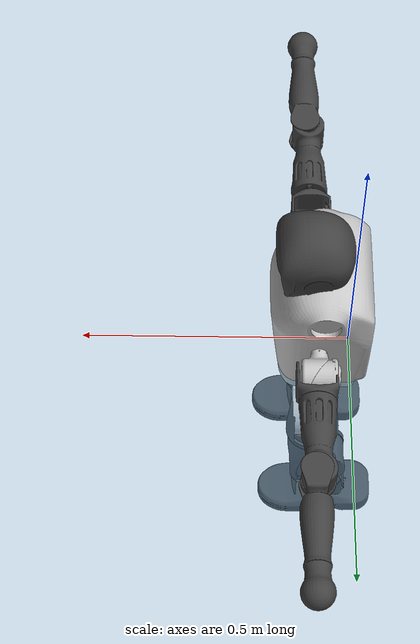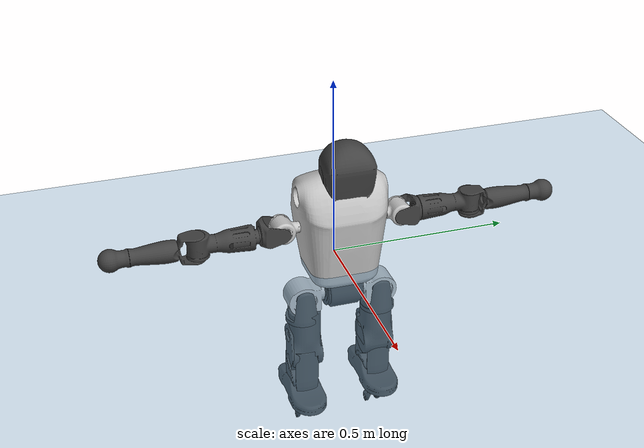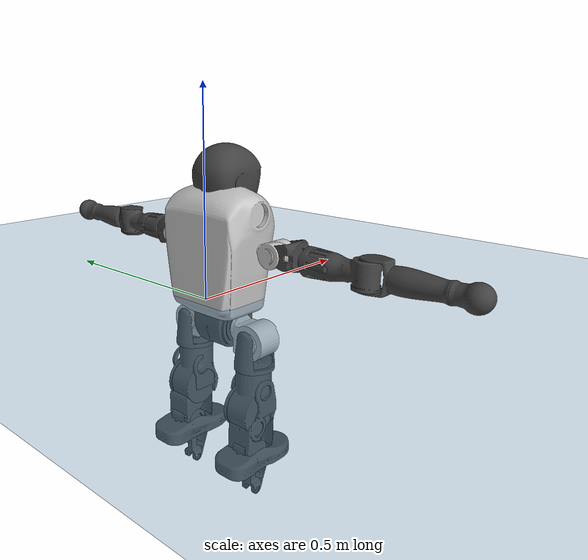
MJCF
<mujoco model="T1">
  <compiler angle="radian" assetdir="assets" balanceinertia="true" inertiafromgeom="false"/>

  <option timestep="0.005" density="1.2" viscosity="2e-05"/>

  <size nkey="1"/>

  <visual>
    <quality shadowsize="8192"/>
    <map shadowclip="0.5"/>
  </visual>

  <default>
    <default class="/">
      <joint armature="0.01" damping="0.01" frictionloss="0.1"/>
      <geom contype="0" conaffinity="0" group="1" solref="-1000 -80"/>
      <site size="0.01 0.005 0.005" group="5"/>
      <general forcelimited="true" biastype="affine" gainprm="25" biasprm="0 -25 -0.6"/>
      <default class="t1">
        <geom rgba="0.25 0.25 0.25 1"/>
        <default class="visual">
          <geom type="mesh" group="2"/>
        </default>
        <default class="collision">
          <geom group="3"/>
        </default>
        <default class="foot">
          <geom size="0.1115 0.05 0.015" type="box" condim="6" group="4" priority="1" solimp="0.015 1 0.015"/>
        </default>
        <default class="reward_collision_sphere">
          <geom group="5" rgba="1 0 0 1"/>
        </default>
      </default>
    </default>
  </default>

  <asset>
    <texture type="skybox" colorspace="auto" name="//unnamed_texture_0" builtin="gradient" rgb1="0.95 0.95 0.95" rgb2="0.95 0.95 0.95" width="100" height="600"/>
    <texture type="2d" colorspace="auto" name="texplane" builtin="checker" rgb1="0.345 0.575 0.748" rgb2="0.345 0.575 0.748" markrgb="1 1 1" width="512" height="512"/>
    <material name="MatPlane" class="/" texture="texplane" texuniform="true" texrepeat="2 2" specular="0.9"/>
    <mesh name="Trunk" class="/" file="Trunk.stl"/>
    <mesh name="H1" class="/" file="H1.stl"/>
    <mesh name="H2" class="/" file="H2.stl"/>
    <mesh name="AL1" class="/" file="AL1.stl"/>
    <mesh name="AL2" class="/" file="AL2.stl"/>
    <mesh name="AL3" class="/" file="AL3.stl"/>
    <mesh name="left_hand_link" class="/" file="left_hand_link.stl"/>
    <mesh name="AR1" class="/" file="AR1.stl"/>
    <mesh name="AR2" class="/" file="AR2.stl"/>
    <mesh name="AR3" class="/" file="AR3.stl"/>
    <mesh name="right_hand_link" class="/" file="right_hand_link.stl"/>
    <mesh name="Waist" class="/" file="Waist.stl"/>
    <mesh name="Hip_Pitch_Left" class="/" file="Hip_Pitch_Left.stl"/>
    <mesh name="Hip_Roll_Left" class="/" file="Hip_Roll_Left.stl"/>
    <mesh name="Hip_Yaw_Left" class="/" file="Hip_Yaw_Left.stl"/>
    <mesh name="Shank_Left" class="/" file="Shank_Left.stl"/>
    <mesh name="Ankle_Cross_Left" class="/" file="Ankle_Cross_Left.stl"/>
    <mesh name="left_foot_link" class="/" file="left_foot_link.stl"/>
    <mesh name="Hip_Pitch_Right" class="/" file="Hip_Pitch_Right.stl"/>
    <mesh name="Hip_Roll_Right" class="/" file="Hip_Roll_Right.stl"/>
    <mesh name="Hip_Yaw_Right" class="/" file="Hip_Yaw_Right.stl"/>
    <mesh name="Shank_Right" class="/" file="Shank_Right.stl"/>
    <mesh name="Ankle_Cross_Right" class="/" file="Ankle_Cross_Right.stl"/>
    <mesh name="right_foot_link" class="/" file="right_foot_link.stl"/>
  </asset>

  <worldbody>
    <geom name="floor" class="/" size="100 100 0.125" type="plane" group="0" material="MatPlane"/>
    <light name="toplight_shadow" class="/" pos="0 0 5" dir="0.0990148 0.0990148 -0.990148" type="directional" ambient="0.04 0.04 0.04" diffuse="0.55 0.55 0.55" specular="0.12 0.12 0.12"/>
    <light name="toplight_fill" class="/" pos="0 0 5" dir="0.0990148 0.0990148 -0.990148" type="directional" castshadow="false" ambient="0.04 0.04 0.04" diffuse="0.3 0.3 0.3" specular="0.08 0.08 0.08"/>
    <body name="trunk" childclass="t1" pos="-0.00205545 -4.93078e-06 -0.00529639" quat="0.999999 -0.000861607 0.000450901 0.000395389">
      <inertial pos="0.0581257 -0.00356265 0.0629621" quat="0.999971 -0.00124404 -0.0037225 -0.00654446" mass="9.37197" diaginertia="0.125887 0.106915 0.00486277"/>
      <joint name="//unnamed_joint_0" type="free" armature="0" damping="0" frictionloss="0"/>
      <geom name="//unnamed_geom_1" class="visual" rgba="0.76 0.76 0.76 1" mesh="Trunk"/>
      <geom name="//unnamed_geom_2" class="collision" size="0.0679183 0.0905577 0.135837" pos="0.0632697 0 0.0722431" type="box"/>
      <geom name="//unnamed_geom_3" class="reward_collision_sphere" size="0.104141" pos="0.0632697 0 0.0602025"/>
      <geom name="//unnamed_geom_4" class="reward_collision_sphere" size="0.0135837" pos="0.0632697 0.0901179 0"/>
      <geom name="//unnamed_geom_5" class="reward_collision_sphere" size="0.0135837" pos="0.0632697 -0.0901179 0"/>
      <geom name="//unnamed_geom_6" class="reward_collision_sphere" size="0.0135837" pos="0.0632697 0.113442 0.108365"/>
      <geom name="//unnamed_geom_7" class="reward_collision_sphere" size="0.0135837" pos="0.0632697 -0.113442 0.108365"/>
      <site name="imu" pos="-0.0436209 0.033373 -0.00413399" size="0.00905577"/>
      <camera name="track" pos="0 -2.12042 0" quat="0.707107 0.707107 0 0" mode="trackcom"/>
      <camera name="ego_camera" pos="0.128648 0 0.252851" quat="-0.5 -0.5 0.5 0.5"/>
      <body name="H1" pos="0.0660798 0.00248149 0.143906" quat="0.999999 5.97131e-06 -0.00117473 0.000199811">
        <inertial pos="-0.00152083 -0.00336453 0.033166" quat="0.765091 -0.0142688 0.00281818 0.643758" mass="0.316375" diaginertia="0.000291854 0.000295688 1.08399e-05"/>
        <joint name="AAHead_yaw" pos="0 0 0" axis="0.0045442 -1.49716e-05 0.99999" range="-1.58487 1.50944" armature="0.00941229" damping="0.0059687" frictionloss="0.0871925"/>
        <geom name="//unnamed_geom_8" class="visual" mesh="H1"/>
        <body name="H2" pos="7.05471e-05 0.00727589 0.0365081" quat="1 -0.00040275 0.000476973 -0.000365496">
          <inertial pos="-0.000959909 -0.00650123 0.0557651" quat="0.988448 0.106181 -0.0746401 -0.0782593" mass="0.428326" diaginertia="0.0027057 0.00263347 0.000136325"/>
          <joint name="Head_pitch" pos="0 0 0" axis="0.00115164 -0.999988 0.00469871" range="-1.2179 0.277391" armature="0.0119988" damping="0.0144918" frictionloss="0.0873656"/>
          <geom name="//unnamed_geom_9" class="visual" mesh="H2"/>
          <geom name="//unnamed_geom_10" class="collision" size="0.0724461" pos="0.0105449 0 0.0662228"/>
          <geom name="//unnamed_geom_11" class="reward_collision_sphere" size="0.0815019" pos="0.0210899 0 0.0602025"/>
        </body>
      </body>
      <body name="AL1" pos="0.066057 0.116794 0.135532" quat="1 -0.000292205 -9.7433e-05 -9.02403e-05">
        <inertial pos="-0.0020029 0.0460525 -0.00746973" quat="0.50861 0.500742 -0.497279 0.493242" mass="0.393743" diaginertia="0.00177093 0.00174667 2.32145e-05"/>
        <joint name="Left_Shoulder_Pitch" pos="0 0 0" axis="0.000501613 1 -0.000219509" stiffness="0.030211" range="-3.16955 1.29239" armature="0.00977145" damping="0.00897726" frictionloss="0.0918094"/>
        <geom name="//unnamed_geom_12" class="visual" rgba="0.76 0.76 0.76 1" mesh="AL1"/>
        <body name="AL2" pos="0.00436393 0.0429347 0.00100112" quat="0.99999 0.00378662 -0.0021607 -0.000475017">
          <inertial pos="0.00309076 0.0386166 0.00496192" quat="0.482689 0.51907 -0.487776 0.509561" mass="0.0950936" diaginertia="0.000460611 0.000391676 1.24001e-05"/>
          <joint name="Left_Shoulder_Roll" pos="0 0 0" axis="-0.998759 -0.0135215 0.0479331" stiffness="0.00927454" range="-1.51055 1.7688" armature="0.00823872" damping="0.0449885" frictionloss="0.0918571"/>
          <geom name="//unnamed_geom_13" class="visual" mesh="AL2"/>
          <body name="AL3" pos="-0.000174548 0.0572871 0.00102845" quat="0.999989 -0.00221032 -0.00315848 -0.00264012">
            <inertial pos="0.00225665 0.0926611 0.000344154" quat="0.690593 0.723007 -0.00868366 -0.0163437" mass="0.685244" diaginertia="0.0148131 0.0159431 4.54884e-05"/>
            <joint name="Left_Elbow_Pitch" pos="0 0 0" axis="0.00312596 -0.999954 0.00909495" stiffness="0.000540751" range="-2.24509 2.2929" armature="0.00981145" damping="0.00377808" frictionloss="0.0969314"/>
            <geom name="//unnamed_geom_14" class="visual" mesh="AL3"/>
            <geom name="//unnamed_geom_15" class="collision" size="0.0271673 0.0679183" pos="0 0.0530105 0" quat="0.707105 0.707108 0 0" type="cylinder"/>
            <geom name="//unnamed_geom_16" class="reward_collision_sphere" size="0.0326008"/>
            <body name="left_hand_link" pos="0.00480083 0.147635 -0.00322345" quat="0.999993 0.00351598 0.00116592 -0.000806">
              <inertial pos="-0.00162914 0.117409 0.0074276" quat="0.702556 0.710848 -0.0284452 0.0173605" mass="0.270994" diaginertia="0.0115828 0.0124263 1.93739e-05"/>
              <joint name="Left_Elbow_Yaw" pos="0 0 0" axis="-0.029771 0.00520173 0.999543" range="-2.43887 -0.104867" armature="0.0084938" damping="0.0222076" frictionloss="0.0511011"/>
              <geom name="//unnamed_geom_17" class="visual" mesh="left_hand_link"/>
              <geom name="//unnamed_geom_18" class="collision" size="0.0271673 0.079238" pos="0 0.137827 0" quat="0.707105 0.707108 0 0" type="cylinder"/>
              <geom name="//unnamed_geom_19" class="reward_collision_sphere" size="0.0452788"/>
              <geom name="//unnamed_geom_20" class="reward_collision_sphere" size="0.0316952" pos="0 0.116623 0"/>
              <geom name="//unnamed_geom_21" class="reward_collision_sphere" size="0.0316952" pos="0 0.227945 0"/>
            </body>
          </body>
        </body>
      </body>
      <body name="AR1" pos="0.0668443 -0.116776 0.13486" quat="0.999999 4.64462e-06 0.00122034 -0.000400623">
        <inertial pos="0.00122401 -0.0489595 0.00225428" quat="0.50737 0.492882 -0.510862 0.488531" mass="0.375256" diaginertia="0.00177746 0.00166433 2.20154e-05"/>
        <joint name="Right_Shoulder_Pitch" pos="0 0 0" axis="-0.00685972 -0.999942 -0.00835809" range="-1.3778 3.2679" armature="0.00820645" damping="0" frictionloss="0.0911653"/>
        <geom name="//unnamed_geom_22" class="visual" rgba="0.76 0.76 0.76 1" mesh="AR1"/>
        <body name="AR2" pos="0.00746385 -0.0547034 0.00299015" quat="1 -0.000203392 0.000405838 -0.000806405">
          <inertial pos="0.00662704 -0.0409252 0.00441524" quat="0.51218 0.47707 -0.515778 0.494013" mass="0.120769" diaginertia="0.000564873 0.000511147 1.37397e-05"/>
          <joint name="Right_Shoulder_Roll" pos="0 0 0" axis="-0.99999 0.00364333 -0.00243695" range="-1.77918 1.72281" armature="0.00974988" damping="0.00703044" frictionloss="0.122969"/>
          <geom name="//unnamed_geom_23" class="visual" mesh="AR2"/>
          <body name="AR3" pos="0.00208761 -0.072735 -0.00673646" quat="1 -0.000578083 0.00076671 -0.000140338">
            <inertial pos="-0.000604092 -0.091049 0.000406973" quat="0.705075 0.707603 -0.0452765 0.0108373" mass="0.776402" diaginertia="0.0172176 0.0164042 4.84745e-05"/>
            <joint name="Right_Elbow_Pitch" pos="0 0 0" axis="-0.0021442 0.999998 -0.000353388" range="-2.27509 2.24768" armature="0.00828569" damping="0" frictionloss="0.054986"/>
            <geom name="//unnamed_geom_24" class="visual" mesh="AR3"/>
            <geom name="//unnamed_geom_25" class="collision" size="0.0271673 0.0679183" pos="0 -0.0530105 0" quat="0.707105 0.707108 0 0" type="cylinder"/>
            <geom name="//unnamed_geom_26" class="reward_collision_sphere" size="0.0326008"/>
            <body name="right_hand_link" pos="0.00663911 -0.157115 7.53614e-05" quat="0.999999 -6.05183e-05 0.000517671 0.000917383">
              <inertial pos="0.00191445 -0.116303 -0.00701689" quat="0.69469 0.71864 -0.00425736 -0.0307276" mass="0.274112" diaginertia="0.0122572 0.0122425 1.88885e-05"/>
              <joint name="Right_Elbow_Yaw" pos="0 0 0" axis="-0.013086 0.00436394 0.999905" range="0.10497 2.46403" armature="0.00477154" damping="0.0190108" frictionloss="0.0877031"/>
              <geom name="//unnamed_geom_27" class="visual" mesh="right_hand_link"/>
              <geom name="//unnamed_geom_28" class="collision" size="0.0271673 0.079238" pos="0 -0.137827 0" quat="0.707105 0.707108 0 0" type="cylinder"/>
              <geom name="//unnamed_geom_29" class="reward_collision_sphere" size="0.0452788"/>
              <geom name="//unnamed_geom_30" class="reward_collision_sphere" size="0.0316952" pos="0 -0.116623 0"/>
              <geom name="//unnamed_geom_31" class="reward_collision_sphere" size="0.0316952" pos="0 -0.227945 0"/>
            </body>
          </body>
        </body>
      </body>
      <body name="Waist" pos="0.06294 -0.000367481 -0.0643407" quat="1 -0.00035076 0.000346882 4.9183e-05">
        <inertial pos="-0.00520327 -0.000111315 0.00424047" quat="0.984074 0.00274135 -0.177566 0.0078068" mass="1.95317" diaginertia="0.00749704 0.00830612 0.000408998"/>
        <joint name="Waist" pos="0 0 0" axis="-0.00155743 0.00106718 0.999998" range="-1.7479 1.54927" armature="0.0115457" damping="0.00778366" frictionloss="0.0809013"/>
        <geom name="//unnamed_geom_32" class="visual" mesh="Waist"/>
        <body name="Hip_Pitch_Left" pos="0.00724157 0.105745 -0.00118492" quat="0.999992 -0.000589396 0.00384673 0.000704983">
          <inertial pos="0.00367648 -0.0162904 -0.0113283" quat="0.974394 0.224489 0.0126605 0.000953819" mass="0.7762" diaginertia="0.00249667 0.00180025 0.00010417"/>
          <joint name="Left_Hip_Pitch" pos="0 0 0" axis="-0.00867542 0.999954 0.00417613" range="-1.81874 1.49986" armature="0.00876856" damping="0.00384737" frictionloss="0.0907319"/>
          <geom name="//unnamed_geom_33" class="visual" rgba="0.76 0.76 0.76 1" mesh="Hip_Pitch_Left"/>
          <body name="Hip_Roll_Left" pos="-0.00264591 0.000367837 -0.0109806" quat="0.999995 -0.00279599 0.00157799 0.000752592">
            <inertial pos="0.00190796 -0.00127155 -0.0330088" quat="0.7031 -0.00614051 -0.0113017 0.710974" mass="0.289933" diaginertia="0.0022597 0.00225242 4.48828e-05"/>
            <joint name="Left_Hip_Roll" pos="0 0 0" axis="-1 0.000432861 -0.0005494" stiffness="0.0134592" range="-1.55172 0.193064" armature="0.00880285" damping="0" frictionloss="0.0664185"/>
            <geom name="//unnamed_geom_34" class="visual" mesh="Hip_Roll_Left"/>
            <geom name="//unnamed_geom_35" class="reward_collision_sphere" size="0.0498067"/>
            <body name="Hip_Yaw_Left" pos="-0.00134713 -0.002375 -0.0477738" quat="0.999999 0.000977567 0.0009351 0.000993329">
              <inertial pos="-0.00640621 -0.00039418 -0.0541486" quat="0.684061 -0.0737491 -0.0282325 0.725138" mass="1.64484" diaginertia="0.034392 0.0377029 0.000199577"/>
              <joint name="Left_Hip_Yaw" pos="0 0 0" axis="0.00604686 -0.0331713 -0.999431" range="-0.990951 1.04913" armature="0.00891461" damping="0" frictionloss="0.0895139"/>
              <geom name="//unnamed_geom_36" class="visual" mesh="Hip_Yaw_Left"/>
              <geom name="//unnamed_geom_37" class="collision" size="0.0452788 0.0724461" type="cylinder"/>
              <body name="Shank_Left" pos="-0.0153812 0.00137954 -0.0807251" quat="0.999999 0.000762244 0.000237877 0.000846789">
                <inertial pos="-0.00764397 0.000314426 -0.0755149" quat="0.997167 0.0174039 -0.0428903 0.0592873" mass="1.24662" diaginertia="0.0456159 0.0433203 0.000145912"/>
                <joint name="Left_Knee_Pitch" pos="0 0 0" axis="-0.00798051 0.999862 -0.0145938" range="-0.0128416 2.34638" armature="0.00916156" damping="0" frictionloss="0.0623101"/>
                <geom name="//unnamed_geom_38" class="visual" mesh="Shank_Left"/>
                <geom name="//unnamed_geom_39" class="collision" size="0.0452788 0.0679183" pos="0 0 -0.0722431" type="cylinder"/>
                <geom name="//unnamed_geom_40" class="reward_collision_sphere" size="0.0588625"/>
                <body name="Ankle_Cross_Left" pos="0.000909756 0.000936221 -0.169834" quat="0.999999 -0.00117314 0.000772502 0.000718702">
                  <inertial pos="-0.00571563 -0.00202363 0.00414911" quat="0.444221 0.551164 0.550842 0.442107" mass="0.0505988" diaginertia="3.17204e-05 3.28978e-05 8.47323e-07"/>
                  <joint name="Left_Ankle_Pitch" pos="0 0 0" axis="0.0118173 0.999926 0.00290483" range="-0.687268 0.292144" armature="0.0102004" damping="0.00644021" frictionloss="0.0606455"/>
                  <geom name="//unnamed_geom_41" class="visual" mesh="Ankle_Cross_Left"/>
                  <body name="left_foot_link" pos="-0.00699375 0.000967739 0.00057851" quat="1 0.000119355 4.28289e-05 1.94844e-05">
                    <inertial pos="-0.000377547 0.00761243 -0.00418566" quat="0.000892359 0.614459 -0.00410204 0.788938" mass="0.522676" diaginertia="0.00336181 0.00321578 0.000174358"/>
                    <joint name="Left_Ankle_Roll" pos="0 0 0" axis="-0.999999 0.000120845 -0.00120508" range="-0.374192 0.45727" armature="0.00868575" damping="0.00285943" frictionloss="0.0997293"/>
                    <geom name="//unnamed_geom_42" class="visual" mesh="left_foot_link"/>
                    <geom name="left_foot" class="foot" size="0.0987716 0.0357479 0.012721" pos="0.0105449 0 -0.00903038"/>
                    <geom name="//unnamed_geom_44" class="reward_collision_sphere" size="0.04709" pos="0.0105449 0 -0.00903038"/>
                    <geom name="//unnamed_geom_45" class="reward_collision_sphere" size="0.0271673" pos="0.100177 -0.0243848 -0.00903038"/>
                    <geom name="//unnamed_geom_46" class="reward_collision_sphere" size="0.0271673" pos="-0.0738146 -0.0243848 -0.00903038"/>
                    <site name="left_foot" class="foot" pos="0.0105449 0 -0.00903038" size="0.00905577"/>
                  </body>
                </body>
              </body>
            </body>
          </body>
        </body>
        <body name="Hip_Pitch_Right" pos="0.000404278 -0.110909 -0.00269219" quat="0.999999 1.65283e-05 -0.00121728 0.000276581">
          <inertial pos="0.00119269 0.00830438 -0.0183611" quat="0.966576 -0.256281 0.00213894 -0.00673786" mass="0.763969" diaginertia="0.00237152 0.00198755 9.3043e-05"/>
          <joint name="Right_Hip_Pitch" pos="0 0 0" axis="-0.027011 -0.999608 0.00739538" stiffness="0.00782708" range="-1.59258 1.80331" armature="0.00662653" damping="0.00122535" frictionloss="0.0789394"/>
          <geom name="//unnamed_geom_47" class="visual" rgba="0.76 0.76 0.76 1" mesh="Hip_Pitch_Right"/>
          <body name="Hip_Roll_Right" pos="-0.00212707 0.00212955 -0.0133835" quat="0.99999 0.00256006 0.00357948 -0.000967775">
            <inertial pos="-0.00747426 -0.000273214 -0.0283172" quat="0.694434 0.0144642 -0.00603277 0.719386" mass="0.302567" diaginertia="0.00252962 0.00217369 4.28092e-05"/>
            <joint name="Right_Hip_Roll" pos="0 0 0" axis="-0.999908 0.0078295 -0.0110625" range="-0.200908 1.46244" armature="0.0100316" damping="0.00149217" frictionloss="0.0903198"/>
            <geom name="//unnamed_geom_48" class="visual" mesh="Hip_Roll_Right"/>
            <geom name="//unnamed_geom_49" class="reward_collision_sphere" size="0.0498067"/>
            <body name="Hip_Yaw_Right" pos="0.00115035 0.00499336 -0.0502956" quat="0.999994 -0.0012919 0.00263297 0.00190155">
              <inertial pos="-0.0105189 -0.00153957 -0.0538787" quat="0.708224 -0.026626 -0.018348 0.705247" mass="1.46459" diaginertia="0.0279899 0.027453 0.000183082"/>
              <joint name="Right_Hip_Yaw" pos="0 0 0" axis="0.00018905 3.82061e-05 -1" stiffness="0.00068491" range="-1.03659 1.17815" armature="0.00868498" damping="0.00530002" frictionloss="0.123056"/>
              <geom name="//unnamed_geom_50" class="visual" mesh="Hip_Yaw_Right"/>
              <geom name="//unnamed_geom_51" class="collision" size="0.0452788 0.0724461" type="cylinder"/>
              <body name="Shank_Right" pos="-0.00704443 -0.00405709 -0.0797908" quat="0.999994 -0.00341854 -0.000761868 -3.04827e-05">
                <inertial pos="-0.0129185 -0.00248911 -0.0759415" quat="0.998944 -0.00404408 -0.0267442 -0.0371451" mass="1.15663" diaginertia="0.0459853 0.0494998 0.000161549"/>
                <joint name="Right_Knee_Pitch" pos="0 0 0" axis="-0.00174377 -0.999938 0.0110329" range="-2.35059 -0.0184138" armature="0.0101933" damping="0" frictionloss="0.0850108"/>
                <geom name="//unnamed_geom_52" class="visual" mesh="Shank_Right"/>
                <geom name="//unnamed_geom_53" class="collision" size="0.0452788 0.0679183" pos="0 0 -0.0722431" type="cylinder"/>
                <geom name="//unnamed_geom_54" class="reward_collision_sphere" size="0.0588625"/>
                <body name="Ankle_Cross_Right" pos="0.00249244 -0.00098647 -0.163976" quat="0.999995 0.00267417 -0.00186616 -0.00059085">
                  <inertial pos="-0.00375426 0.00124993 -0.00557241" quat="0.438907 0.550268 0.554419 0.444057" mass="0.0619612" diaginertia="4.00198e-05 3.59225e-05 9.21813e-07"/>
                  <joint name="Right_Ankle_Pitch" pos="0 0 0" axis="-0.0077738 -0.99896 0.0449377" stiffness="0.000521418" range="-0.366425 0.95621" armature="0.00662627" damping="0.0232552" frictionloss="0.130823"/>
                  <geom name="//unnamed_geom_55" class="visual" mesh="Ankle_Cross_Right"/>
                  <body name="right_foot_link" pos="-0.0041747 -0.00132869 -0.00900509" quat="0.999999 -8.5821e-05 0.000973764 0.00069299">
                    <inertial pos="0.00040847 0.000146711 0.000840926" quat="-0.00478446 0.62198 -0.00770844 0.782981" mass="0.465797" diaginertia="0.00365231 0.0032438 0.000174501"/>
                    <joint name="Right_Ankle_Roll" pos="0 0 0" axis="-0.999647 -0.0153892 0.021675" range="-0.621739 0.404463" armature="0.0114522" damping="0.0092459" frictionloss="0.10012"/>
                    <geom name="//unnamed_geom_56" class="visual" mesh="right_foot_link"/>
                    <geom name="right_foot" class="foot" size="0.1314 0.0339886 0.0116544" pos="0.0105449 0 -0.00903038"/>
                    <geom name="//unnamed_geom_58" class="reward_collision_sphere" size="0.0362231"/>
                    <geom name="//unnamed_geom_59" class="reward_collision_sphere" size="0.0271673" pos="0.0105449 0 -0.00903038"/>
                    <geom name="//unnamed_geom_60" class="reward_collision_sphere" size="0.0271673" pos="0.100177 0.0243848 -0.00903038"/>
                    <geom name="//unnamed_geom_61" class="reward_collision_sphere" size="0.0271673" pos="-0.0738146 0.0243848 -0.00903038"/>
                    <site name="right_foot" class="foot" pos="0.0105449 0 -0.00903038" size="0.00905577"/>
                  </body>
                </body>
              </body>
            </body>
          </body>
        </body>
      </body>
    </body>
  </worldbody>

  <contact>
    <pair class="/" geom1="floor" geom2="left_foot" name="//unnamed_contact_0"/>
    <pair class="/" geom1="floor" geom2="right_foot" name="//unnamed_contact_1"/>
  </contact>

  <actuator>
    <general name="AAHead_yaw" class="/" joint="AAHead_yaw" forcerange="-6.7502 6.7502" gainprm="19.7934" biasprm="0 -19.7934 -0.540867"/>
    <general name="Head_pitch" class="/" joint="Head_pitch" forcerange="-6.81603 6.81603" gainprm="19.7934" biasprm="0 -19.7934 -0.540867"/>
    <general name="Left_Shoulder_Pitch" class="/" joint="Left_Shoulder_Pitch" forcerange="-15.178 15.178" gainprm="19.7934" biasprm="0 -19.7934 -0.540867"/>
    <general name="Left_Shoulder_Roll" class="/" joint="Left_Shoulder_Roll" forcerange="-15.6021 15.6021" gainprm="19.7934" biasprm="0 -19.7934 -0.540867"/>
    <general name="Left_Elbow_Pitch" class="/" joint="Left_Elbow_Pitch" forcerange="-12.6982 12.6982" gainprm="19.7934" biasprm="0 -19.7934 -0.540867"/>
    <general name="Left_Elbow_Yaw" class="/" joint="Left_Elbow_Yaw" forcerange="-15.4077 15.4077" gainprm="19.7934" biasprm="0 -19.7934 -0.540867"/>
    <general name="Right_Shoulder_Pitch" class="/" joint="Right_Shoulder_Pitch" forcerange="-16.3051 16.3051" gainprm="19.7934" biasprm="0 -19.7934 -0.540867"/>
    <general name="Right_Shoulder_Roll" class="/" joint="Right_Shoulder_Roll" forcerange="-16.0877 16.0877" gainprm="19.7934" biasprm="0 -19.7934 -0.540867"/>
    <general name="Right_Elbow_Pitch" class="/" joint="Right_Elbow_Pitch" forcerange="-16.131 16.131" gainprm="19.7934" biasprm="0 -19.7934 -0.540867"/>
    <general name="Right_Elbow_Yaw" class="/" joint="Right_Elbow_Yaw" forcerange="-12.4324 12.4324" gainprm="19.7934" biasprm="0 -19.7934 -0.540867"/>
    <general name="Waist" class="/" joint="Waist" forcerange="-25.9369 25.9369" gainprm="19.7934" biasprm="0 -19.7934 -0.540867"/>
    <general name="Left_Hip_Pitch" class="/" joint="Left_Hip_Pitch" forcerange="-54.2933 54.2933" gainprm="19.7934" biasprm="0 -19.7934 -0.540867"/>
    <general name="Left_Hip_Roll" class="/" joint="Left_Hip_Roll" forcerange="-28.6089 28.6089" gainprm="19.7934" biasprm="0 -19.7934 -0.540867"/>
    <general name="Left_Hip_Yaw" class="/" joint="Left_Hip_Yaw" forcerange="-27.2955 27.2955" gainprm="19.7934" biasprm="0 -19.7934 -0.540867"/>
    <general name="Left_Knee_Pitch" class="/" joint="Left_Knee_Pitch" forcerange="-40.9933 40.9933" gainprm="19.7934" biasprm="0 -19.7934 -0.540867"/>
    <general name="Left_Ankle_Pitch" class="/" joint="Left_Ankle_Pitch" forcerange="-19.234 19.234" gainprm="19.7934" biasprm="0 -19.7934 -0.540867"/>
    <general name="Left_Ankle_Roll" class="/" joint="Left_Ankle_Roll" forcerange="-13.6445 13.6445" gainprm="19.7934" biasprm="0 -19.7934 -0.540867"/>
    <general name="Right_Hip_Pitch" class="/" joint="Right_Hip_Pitch" forcerange="-28.8174 28.8174" gainprm="19.7934" biasprm="0 -19.7934 -0.540867"/>
    <general name="Right_Hip_Roll" class="/" joint="Right_Hip_Roll" forcerange="-28.2996 28.2996" gainprm="19.7934" biasprm="0 -19.7934 -0.540867"/>
    <general name="Right_Hip_Yaw" class="/" joint="Right_Hip_Yaw" forcerange="-27.3451 27.3451" gainprm="19.7934" biasprm="0 -19.7934 -0.540867"/>
    <general name="Right_Knee_Pitch" class="/" joint="Right_Knee_Pitch" forcerange="-47.3207 47.3207" gainprm="19.7934" biasprm="0 -19.7934 -0.540867"/>
    <general name="Right_Ankle_Pitch" class="/" joint="Right_Ankle_Pitch" forcerange="-19.1111 19.1111" gainprm="19.7934" biasprm="0 -19.7934 -0.540867"/>
    <general name="Right_Ankle_Roll" class="/" joint="Right_Ankle_Roll" forcerange="-17.5898 17.5898" gainprm="19.7934" biasprm="0 -19.7934 -0.540867"/>
  </actuator>

  <sensor>
    <gyro site="imu" name="imu_angular_velocity"/>
    <velocimeter site="imu" name="imu_linear_velocity"/>
    <framelinvel objtype="site" objname="left_foot" name="left_foot_global_linear_velocity"/>
    <framelinvel objtype="site" objname="right_foot" name="right_foot_global_linear_velocity"/>
  </sensor>

  <keyframe>
    <key name="home" qpos="0 0 0.6385 1 0 0 0 0 0 0 1.4 0 -0.4 0 -1.4 0 0.4 0 -0.4 0 0 0.8 -0.4 0 0.4 0 0 -0.8 0.4 0"/>
  </keyframe>
</mujoco>
